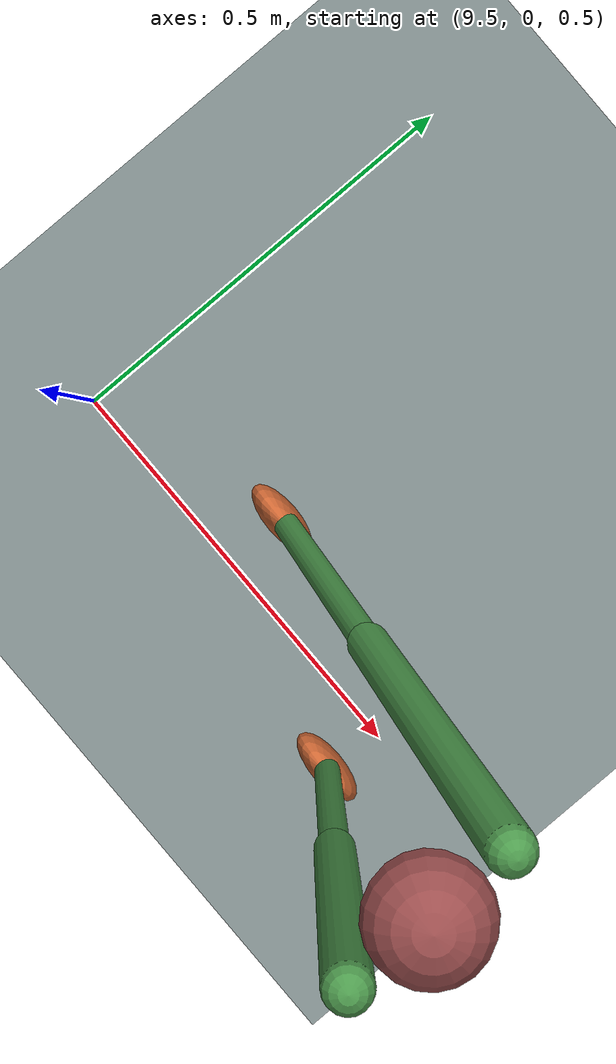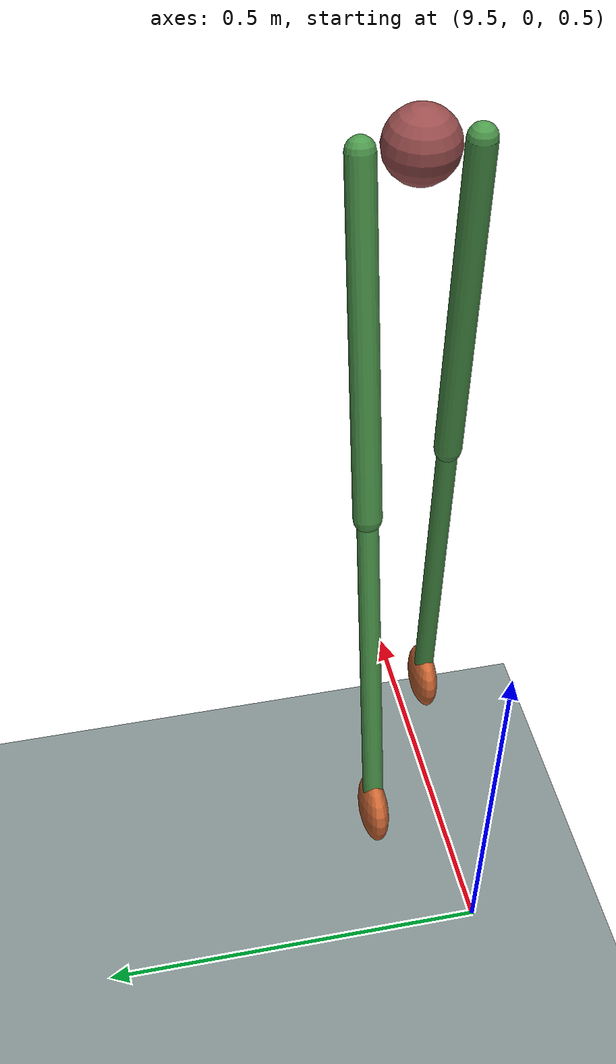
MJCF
<mujoco>
  <option timestep="0.001" gravity="0 0 -9.81" impratio="0.00001" cone="elliptic"/>

  <asset>
    <!-- Materials and textures -->
    <texture name="ground_texture" type="2d" builtin="checker" width="512" height="512"
             rgb1="0.8 0.8 0.8" rgb2="0.2 0.3 0.3"/>
    <material name="ground_material" texture="ground_texture" texrepeat="20 20"
              reflectance="0.2"/>
    <material name="torso_material" rgba="0.6 0.3 0.3 1"/>
    <material name="leg_material" rgba="0.3 0.6 0.3 1"/>
    <material name="outer_leg_material" rgba="0.3 0.3 0.6 1"/>
    <material name="feet_material" rgba="0.8 0.4 0.2 1"/>
  </asset>

  <worldbody>
    <!-- Ground plane -->
    <geom name="ground" type="plane" size="20 20 0.1" material="ground_material" condim="3"/>

    <!-- Sloped plane -->
    <geom name="slope" type="plane" pos="0 0 0" euler="0 -2 0" size="15 15 10" material="ground_material"/>

    <!-- Light source -->
    <light pos="10 0 30" dir="0 0 -1" diffuse="1 1 1" specular="0.5 0.5 0.5"/>

    <!-- Torso body -->
    <body name="torso" pos="10 0 1.4">

      <!-- Movement along y-axis -->
      <joint name="torso_slide_x" type="slide" axis="1 0 0"/>

      <!-- Movement along z-axis -->
      <joint name="torso_slide_z" type="slide" axis="0 0 1"/>

      <!-- Yaw around y-axis -->
      <joint name="torso_y_rot" type="hinge" axis="0 1 0"/>

      <!-- Torso geometry -->
      <geom name="torso_geom" type="sphere" size="0.05" mass="10"
            material="torso_material"/>

      <!-- Left Leg -->
      <body name="left_leg" pos="0 -0.075 0" euler="0 0 0">
        <!-- Hip joint -->
        <joint name="left_hip" type="hinge" axis="0 -1 0" damping="0.0" frictionloss="0.0"/>  <!-- range="-45 45" -->
        <!-- Thigh geometry -->
        <geom name="left_thigh" type="capsule" fromto="0 0 0 0 0 -0.5" size="0.02"
              material="leg_material" mass="5"/>
        <!-- Knee joint -->
        <body name="left_shin" pos="0 0 -0.5">
          <joint name="left_knee" type="slide" axis="0 0 1" range="-0 0.25"/>
          <!-- Shin geometry -->
          <geom name="left_shin_geom" type="capsule" fromto="0 0 0 0 0 -0.5"
                size="0.015" material="leg_material" mass="0.0"/>
          <!-- Foot geometry -->
          <geom name="left_foot" type="ellipsoid" pos="0 0 -0.5" size="0.05 0.02 0.05"
                material="feet_material" mass="0.1  "/>
        </body>
      </body>

      <!-- Right Leg -->
      <body name="right_leg" pos="0 0.075 0" euler="0 15 0">
        <!-- Hip joint -->
        <joint name="right_hip" type="hinge" axis="0 -1 0" damping="0.0" frictionloss="0.0"/> <!-- range="-45 45" -->
        <!-- Thigh geometry -->
        <geom name="right_thigh" type="capsule" fromto="0 0 0 0 0 -0.5" size="0.02"
              material="leg_material"/>
        <!-- Knee joint -->
        <body name="right_shin" pos="0 0 -0.5">
          <joint name="right_knee" type="slide" axis="0 0 1" range="-0 0.25"/>
          <!-- Shin geometry -->
          <geom name="right_shin_geom" type="capsule" fromto="0 0 0 0 0 -0.5"
                size="0.015" material="leg_material" mass="0.0"/>
          <!-- Foot geometry -->
          <geom name="right_foot" type="ellipsoid" pos="0 0 -0.5" size="0.05 0.02 0.05"
                material="feet_material" mass="0.25"/>
        </body>
      </body>

    </body>
  </worldbody>

<actuator>

  <position joint="left_knee" name="left_knee_actuator" kp="500" kv="1" ctrlrange="-0.25 0.25"/>
  <position joint="right_knee" name="right_knee_actuator" kp="500" kv="1" ctrlrange="-0.25 0.25"/>

</actuator>

</mujoco>
